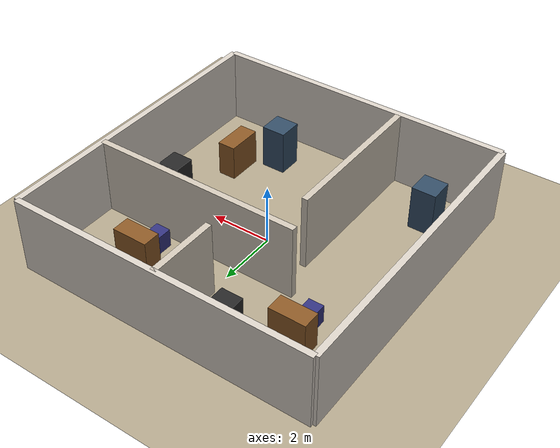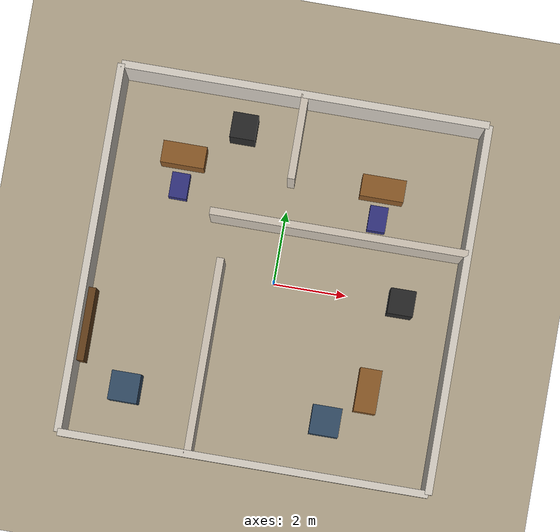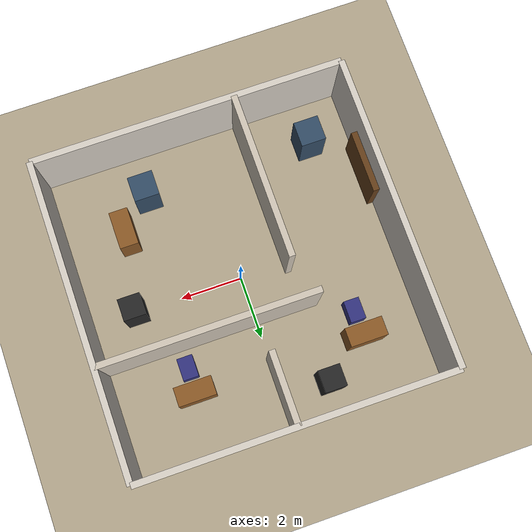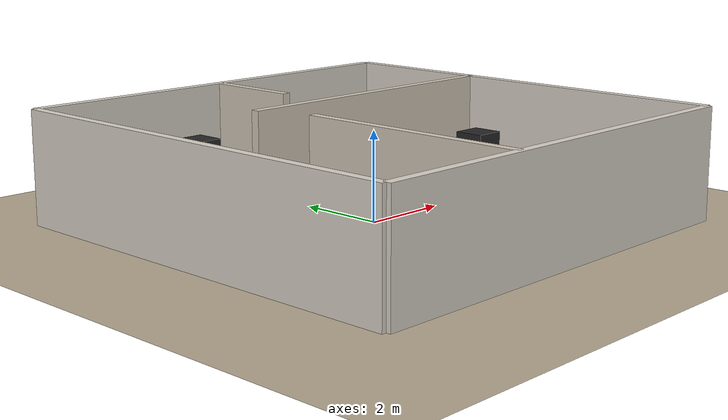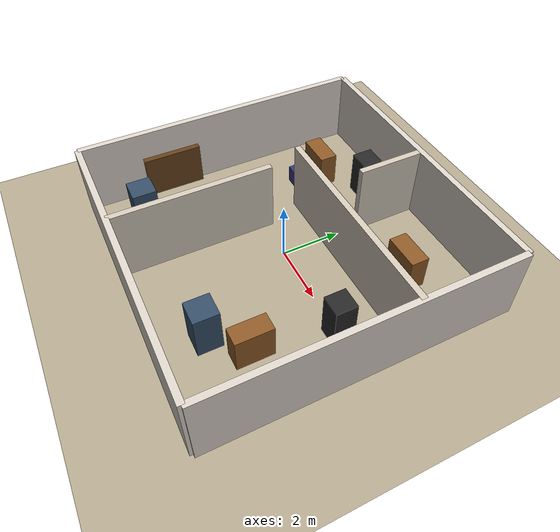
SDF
<?xml version="1.0" ?>
<sdf version="1.8">
  <world name="office_small">

    <!-- ===== Required Ignition Gazebo System Plugins ===== -->
    <plugin filename="libignition-gazebo-physics-system.so"
            name="ignition::gazebo::systems::Physics"/>
    <plugin filename="libignition-gazebo-user-commands-system.so"
            name="ignition::gazebo::systems::UserCommands"/>
    <plugin filename="libignition-gazebo-scene-broadcaster-system.so"
            name="ignition::gazebo::systems::SceneBroadcaster"/>
    <plugin filename="libignition-gazebo-contact-system.so"
            name="ignition::gazebo::systems::Contact"/>

    <!-- ===== Lighting ===== -->
    <light type="directional" name="sun">
      <cast_shadows>true</cast_shadows>
      <pose>0 0 10 0 0 0</pose>
      <diffuse>0.9 0.9 0.9 1</diffuse>
      <specular>0.3 0.3 0.3 1</specular>
      <direction>-0.5 0.1 -0.9</direction>
    </light>

    <!-- ===== Floor ===== -->
    <model name="floor">
      <static>true</static>
      <link name="link">
        <collision name="collision">
          <geometry><plane><normal>0 0 1</normal><size>20 20</size></plane></geometry>
        </collision>
        <visual name="visual">
          <geometry><plane><normal>0 0 1</normal><size>20 20</size></plane></geometry>
          <material>
            <ambient>0.7 0.65 0.55 1</ambient>
            <diffuse>0.7 0.65 0.55 1</diffuse>
          </material>
        </visual>
      </link>
    </model>

    <!-- ===== Outer Walls ===== -->
    <!-- North wall -->
    <model name="wall_north">
      <static>true</static>
      <pose>0 5 1.25 0 0 0</pose>
      <link name="link">
        <collision name="col"><geometry><box><size>10 0.2 2.5</size></box></geometry></collision>
        <visual name="vis">
          <geometry><box><size>10 0.2 2.5</size></box></geometry>
          <material><ambient>0.85 0.82 0.78 1</ambient><diffuse>0.85 0.82 0.78 1</diffuse></material>
        </visual>
      </link>
    </model>

    <!-- South wall -->
    <model name="wall_south">
      <static>true</static>
      <pose>0 -5 1.25 0 0 0</pose>
      <link name="link">
        <collision name="col"><geometry><box><size>10 0.2 2.5</size></box></geometry></collision>
        <visual name="vis">
          <geometry><box><size>10 0.2 2.5</size></box></geometry>
          <material><ambient>0.85 0.82 0.78 1</ambient><diffuse>0.85 0.82 0.78 1</diffuse></material>
        </visual>
      </link>
    </model>

    <!-- West wall -->
    <model name="wall_west">
      <static>true</static>
      <pose>-5 0 1.25 0 0 0</pose>
      <link name="link">
        <collision name="col"><geometry><box><size>0.2 10 2.5</size></box></geometry></collision>
        <visual name="vis">
          <geometry><box><size>0.2 10 2.5</size></box></geometry>
          <material><ambient>0.85 0.82 0.78 1</ambient><diffuse>0.85 0.82 0.78 1</diffuse></material>
        </visual>
      </link>
    </model>

    <!-- East wall -->
    <model name="wall_east">
      <static>true</static>
      <pose>5 0 1.25 0 0 0</pose>
      <link name="link">
        <collision name="col"><geometry><box><size>0.2 10 2.5</size></box></geometry></collision>
        <visual name="vis">
          <geometry><box><size>0.2 10 2.5</size></box></geometry>
          <material><ambient>0.85 0.82 0.78 1</ambient><diffuse>0.85 0.82 0.78 1</diffuse></material>
        </visual>
      </link>
    </model>

    <!-- ===== Interior Dividers (hallway + rooms) ===== -->
    <!-- Horizontal divider (creates top corridor) -->
    <model name="divider_h1">
      <static>true</static>
      <pose>1.5 1.5 1.25 0 0 0</pose>
      <link name="link">
        <collision name="col"><geometry><box><size>7 0.2 2.5</size></box></geometry></collision>
        <visual name="vis">
          <geometry><box><size>7 0.2 2.5</size></box></geometry>
          <material><ambient>0.82 0.78 0.72 1</ambient><diffuse>0.82 0.78 0.72 1</diffuse></material>
        </visual>
      </link>
    </model>

    <!-- Vertical divider (splits two rooms on north side) - gap added for doorway -->
    <model name="divider_v1">
      <static>true</static>
      <pose>0 3.85 1.25 0 0 0</pose>
      <link name="link">
        <collision name="col"><geometry><box><size>0.2 2.3 2.5</size></box></geometry></collision>
        <visual name="vis">
          <geometry><box><size>0.2 2.3 2.5</size></box></geometry>
          <material><ambient>0.82 0.78 0.72 1</ambient><diffuse>0.82 0.78 0.72 1</diffuse></material>
        </visual>
      </link>
    </model>

    <!-- Vertical divider (splits south zone) - widened gap for doorway -->
    <model name="divider_v2">
      <static>true</static>
      <pose>-1.5 -2.35 1.25 0 0 0</pose>
      <link name="link">
        <collision name="col"><geometry><box><size>0.2 5.3 2.5</size></box></geometry></collision>
        <visual name="vis">
          <geometry><box><size>0.2 5.3 2.5</size></box></geometry>
          <material><ambient>0.82 0.78 0.72 1</ambient><diffuse>0.82 0.78 0.72 1</diffuse></material>
        </visual>
      </link>
    </model>

    <!-- ===== Furniture: desks (boxes) ===== -->
    <model name="desk_1">
      <static>true</static>
      <pose>-3 3.0 0.6 0 0 0</pose>
      <link name="link">
        <collision name="col"><geometry><box><size>1.2 0.6 1.2</size></box></geometry></collision>
        <visual name="vis">
          <geometry><box><size>1.2 0.6 1.2</size></box></geometry>
          <material><ambient>0.55 0.35 0.15 1</ambient><diffuse>0.55 0.35 0.15 1</diffuse></material>
        </visual>
      </link>
    </model>

    <model name="desk_2">
      <static>true</static>
      <pose>2.5 3.0 0.6 0 0 0</pose>
      <link name="link">
        <collision name="col"><geometry><box><size>1.2 0.6 1.2</size></box></geometry></collision>
        <visual name="vis">
          <geometry><box><size>1.2 0.6 1.2</size></box></geometry>
          <material><ambient>0.55 0.35 0.15 1</ambient><diffuse>0.55 0.35 0.15 1</diffuse></material>
        </visual>
      </link>
    </model>

    <model name="desk_3">
      <static>true</static>
      <pose>3.0 -2.5 0.6 0 0 1.5708</pose>
      <link name="link">
        <collision name="col"><geometry><box><size>1.2 0.6 1.2</size></box></geometry></collision>
        <visual name="vis">
          <geometry><box><size>1.2 0.6 1.2</size></box></geometry>
          <material><ambient>0.55 0.35 0.15 1</ambient><diffuse>0.55 0.35 0.15 1</diffuse></material>
        </visual>
      </link>
    </model>

    <!-- ===== Furniture: chairs (thin boxes) ===== -->
    <model name="chair_1">
      <static>true</static>
      <pose>-3 2.2 0.25 0 0 0</pose>
      <link name="link">
        <collision name="col"><geometry><box><size>0.5 0.7 0.7</size></box></geometry></collision>
        <visual name="vis">
          <geometry><box><size>0.5 0.7 0.7</size></box></geometry>
          <material><ambient>0.2 0.2 0.5 1</ambient><diffuse>0.2 0.2 0.5 1</diffuse></material>
        </visual>
      </link>
    </model>

    <model name="chair_2">
      <static>true</static>
      <pose>2.5 2.2 0.25 0 0 0</pose>
      <link name="link">
        <collision name="col"><geometry><box><size>0.5 0.7 0.7</size></box></geometry></collision>
        <visual name="vis">
          <geometry><box><size>0.5 0.7 0.7</size></box></geometry>
          <material><ambient>0.2 0.2 0.5 1</ambient><diffuse>0.2 0.2 0.5 1</diffuse></material>
        </visual>
      </link>
    </model>

    <!-- ===== A cabinet/shelf for variety ===== -->
    <model name="shelf_1">
      <static>true</static>
      <pose>-4.85 -2.0 0.75 0 0 0</pose>
      <link name="link">
        <collision name="col"><geometry><box><size>0.3 2.0 1.5</size></box></geometry></collision>
        <visual name="vis">
          <geometry><box><size>0.3 2.0 1.5</size></box></geometry>
          <material><ambient>0.4 0.25 0.1 1</ambient><diffuse>0.4 0.25 0.1 1</diffuse></material>
        </visual>
      </link>
    </model>

    <!-- ===== Additional Obstacles (Box Pillars) ===== -->
    <!-- Tall slate-blue obstacle in Room C (South-West corner) -->
    <model name="obstacle_box_1">
      <static>true</static>
      <pose>-3.5 -3.5 0.75 0 0 0</pose>
      <link name="link">
        <collision name="col"><geometry><box><size>0.8 0.8 1.5</size></box></geometry></collision>
        <visual name="vis">
          <geometry><box><size>0.8 0.8 1.5</size></box></geometry>
          <material><ambient>0.2 0.3 0.4 1</ambient><diffuse>0.2 0.3 0.4 1</diffuse></material>
        </visual>
      </link>
    </model>

    <!-- Tall slate-blue obstacle in Room D (South-East near wall) -->
    <model name="obstacle_box_2">
      <static>true</static>
      <pose>2.0 -3.5 0.75 0 0 0</pose>
      <link name="link">
        <collision name="col"><geometry><box><size>0.8 0.8 1.5</size></box></geometry></collision>
        <visual name="vis">
          <geometry><box><size>0.8 0.8 1.5</size></box></geometry>
          <material><ambient>0.2 0.3 0.4 1</ambient><diffuse>0.2 0.3 0.4 1</diffuse></material>
        </visual>
      </link>
    </model>

    <!-- Tall dark-gray obstacle in Room D (East side open area) -->
    <model name="obstacle_box_3">
      <static>true</static>
      <pose>3.5 0.0 0.75 0 0 0</pose>
      <link name="link">
        <collision name="col"><geometry><box><size>0.7 0.7 1.5</size></box></geometry></collision>
        <visual name="vis">
          <geometry><box><size>0.7 0.7 1.5</size></box></geometry>
          <material><ambient>0.15 0.15 0.15 1</ambient><diffuse>0.15 0.15 0.15 1</diffuse></material>
        </visual>
      </link>
    </model>

    <!-- Tall dark-gray obstacle in Room A (North-West) -->
    <model name="obstacle_box_4">
      <static>true</static>
      <pose>-1.5 4.0 0.75 0 0 0</pose>
      <link name="link">
        <collision name="col"><geometry><box><size>0.7 0.7 1.5</size></box></geometry></collision>
        <visual name="vis">
          <geometry><box><size>0.7 0.7 1.5</size></box></geometry>
          <material><ambient>0.15 0.15 0.15 1</ambient><diffuse>0.15 0.15 0.15 1</diffuse></material>
        </visual>
      </link>
    </model>

  </world>
</sdf>
